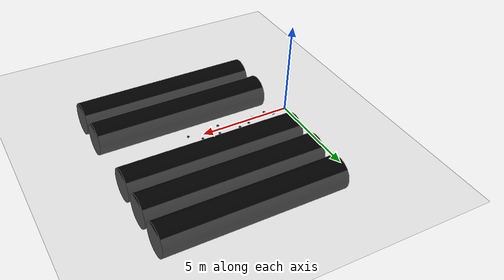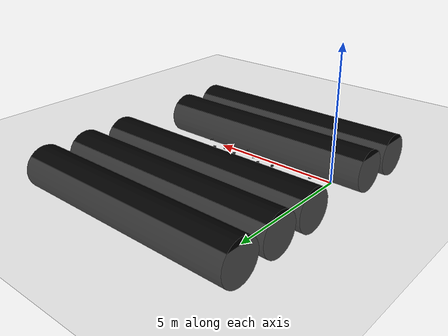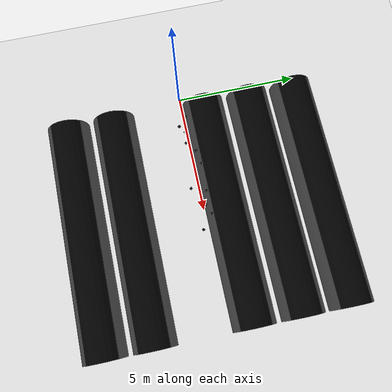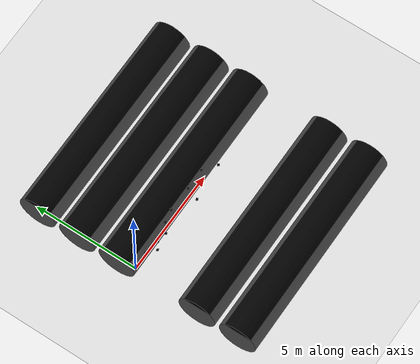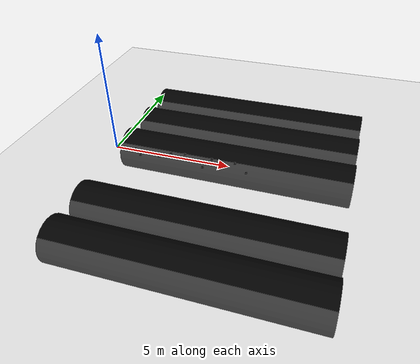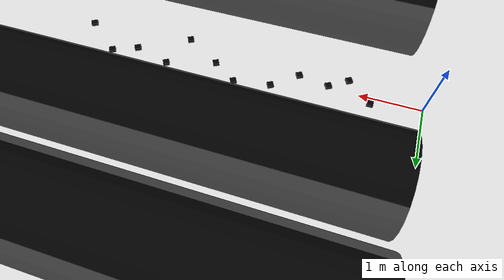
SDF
<sdf version="1.6">
 <world name="default">
  <include><uri>model://sun</uri></include>
  <include><uri>model://ground_plane</uri></include>
  <include><uri>model://ridge</uri><name>"ridge01"</name><pose>0 5 0 0 0 0</pose></include>
  <include><uri>model://ridge</uri><name>"ridge02"</name><pose>0 3 0 0 0 0</pose></include>
  <include><uri>model://ridge</uri><name>"ridge03"</name><pose>0 1 0 0 0 0</pose></include>
  <include><uri>model://ridge</uri><name>"ridge05"</name><pose>0 -3 0 0 0 0</pose></include>
  <include><uri>model://ridge</uri><name>"ridge06"</name><pose>0 -5 0 0 0 0</pose></include>
  <include><uri>model://weed</uri><name>"weed01"</name><pose>0.8 0.1 0 0 0 0</pose></include>
  <include><uri>model://weed</uri><name>"weed02"</name><pose>1.2 -0.25 0 0 0 0.5</pose></include>
  <include><uri>model://weed</uri><name>"weed03"</name><pose>1.5 -0.05 0 0 0 0.5</pose></include>
  <include><uri>model://weed</uri><name>"weed04"</name><pose>2.0 -0.12 0 0 0 0.5</pose></include>
  <include><uri>model://weed</uri><name>"weed05"</name><pose>2.4 0.21 0 0 0 0.5</pose></include>
  <include><uri>model://weed</uri><name>"weed06"</name><pose>3.0 0.31 0 0 0 0.5</pose></include>
  <include><uri>model://weed</uri><name>"weed07"</name><pose>3.4 0.04 0 0 0 0.5</pose></include>
  <include><uri>model://weed</uri><name>"weed08"</name><pose>4.0 -0.32 0 0 0 0.5</pose></include>
  <include><uri>model://weed</uri><name>"weed09"</name><pose>4.2 0.28 0 0 0 0.5</pose></include>
  <include><uri>model://weed</uri><name>"weed10"</name><pose>4.8 0.12 0 0 0 0.5</pose></include>
  <include><uri>model://weed</uri><name>"weed11"</name><pose>5.2 0.29 0 0 0 0.5</pose></include>
  <include><uri>model://weed</uri><name>"weed12"</name><pose>5.8 -0.18 0 0 0 0.5</pose></include>
 </world>
</sdf>

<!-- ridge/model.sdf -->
<sdf version="1.6">
  <model name='ridge'>
    <static>true</static>
    <pose>0 0 0.0 0 -0 0</pose>
    <link name='ridge'>
      <pose>5 0 -0.65 0 1.5707 0</pose>
      <visual name='visual'>
        <geometry>
          <cylinder>
            <radius>0.9</radius>
            <length>10.0</length>
          </cylinder>
        </geometry>
        <material>
          <ambient>1.0 0.7 0.5 1</ambient>
          <diffuse>0 0 0 1</diffuse>
          <specular>0 0 0 0</specular>
          <emissive>0 0 0 1</emissive>
        </material>
      </visual>
    </link>
  </model>
</sdf>

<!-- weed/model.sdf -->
<sdf version="1.6">
  <model name='weed'>
    <static>true</static>
    <pose>0 0 0.0 0 -0 0</pose>
    <link name='weed'>
      <pose>0 0 0 0 0 0</pose>
      <visual name='visual'>
        <geometry>
          <box>
            <size>0.1 0.1 0.05</size>
          </box>
        </geometry>
        <material>
          <ambient>0.3 1.0 0.5 1</ambient>
          <diffuse>0 0 0 1</diffuse>
          <specular>0 0 0 0</specular>
          <emissive>0 0 0 1</emissive>
        </material>
      </visual>
    </link>
  </model>
</sdf>
